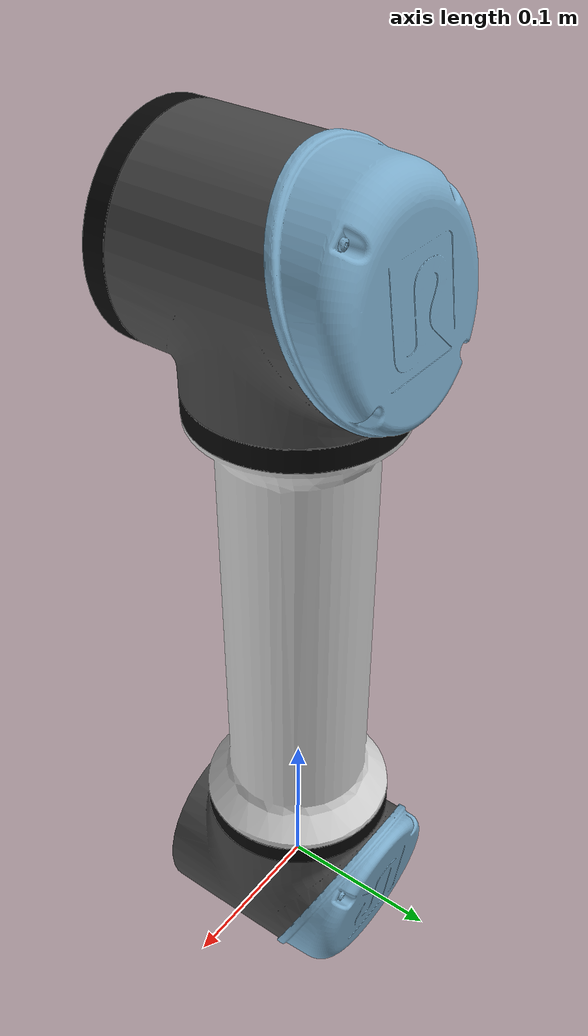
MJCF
<mujoco model="upperarm">
  <default>
    <default class="visual">
      <geom group="2" type="mesh" contype="0" conaffinity="0"/>
    </default>
    <default class="collision">
      <geom group="3" type="mesh"/>
    </default>
  </default>
  <asset>
    <material name="material_upperarm_0" specular="0.20000000000000004" shininess="1.0" rgba="0.49019608 0.67843137 0.80000000 1.0"/>
    <material name="material_upperarm_1" specular="0.20000000000000004" shininess="1.0" rgba="0.27843137 0.27843137 0.27843137 1.0"/>
    <material name="material_upperarm_2" specular="0.20000000000000004" shininess="1.0" rgba="0.03137255 0.03137255 0.03137255 1.0"/>
    <material name="material_upperarm_3" specular="0.20000000000000004" shininess="1.0" rgba="0.81960784 0.81960784 0.81960784 1.0"/>
    <mesh file="upperarm_0.obj"/>
    <mesh file="upperarm_1.obj"/>
    <mesh file="upperarm_2.obj"/>
    <mesh file="upperarm_3.obj"/>
  </asset>
  <worldbody>
    <body name="upperarm">
      <geom mesh="upperarm_0" material="material_upperarm_3" class="visual"/>
      <geom mesh="upperarm_1" material="material_upperarm_2" class="visual"/>
      <geom mesh="upperarm_2" material="material_upperarm_1" class="visual"/>
      <geom mesh="upperarm_3" material="material_upperarm_0" class="visual"/>
      <geom mesh="upperarm_0" class="collision"/>
      <geom mesh="upperarm_1" class="collision"/>
      <geom mesh="upperarm_2" class="collision"/>
      <geom mesh="upperarm_3" class="collision"/>
    </body>
  </worldbody>
</mujoco>
